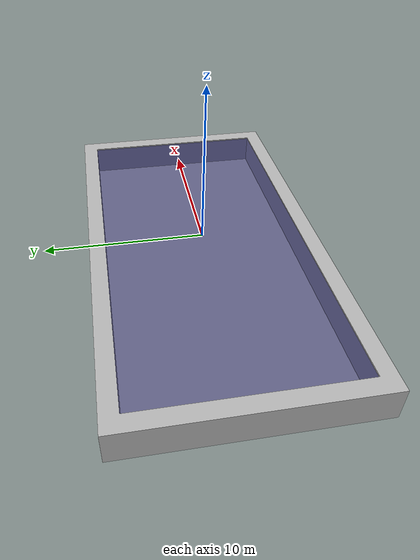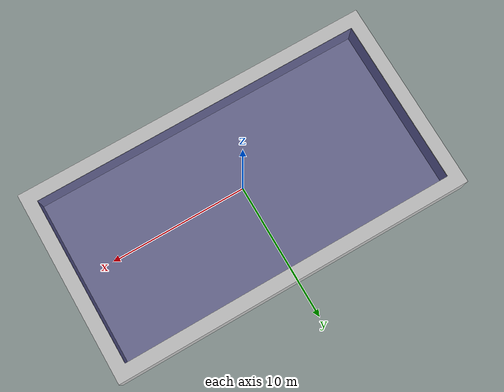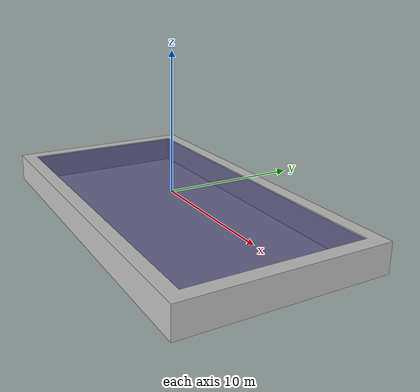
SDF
<?xml version="1.0"?>

<sdf version="1.5">
    <world name="semi_olympic_pool_world">

        <physics name="default_physics" default="true" type="ode">
            <max_step_size>0.001</max_step_size>
            <real_time_factor>1</real_time_factor>
            <real_time_update_rate>1000</real_time_update_rate>
            <ode>
            <solver>
                <type>quick</type>
                <iters>50</iters>
                <sor>0.5</sor>
            </solver>
            </ode>
        </physics>

        <scene>
            <sky>
                <clouds>
                    <speed>12</speed>
                </clouds>
            </sky>
            <shadows>1</shadows>
        </scene>

        <include>
            <uri>model://sun</uri>
        </include>

        <model name="water">
            <static>true</static>
            <pose>0 0 0 0 0 0</pose>
            <link name="water_link">
                <visual name="water_visual">
                    <transparency>0.5</transparency>
                    <cast_shadows>false</cast_shadows>
                    <geometry>
                        <box>
                            <size>25 12.5 0.01</size>
                        </box>
                    </geometry>
                    <material>
                        <ambient>0.2 0.2 0.4 1</ambient>
                        <diffuse>0.1 0.1 0.4 1</diffuse>
                        <specular>0.1 0.1 0.3 1</specular>
                        <emissive>0 0 0 1</emissive>
                    </material>
                </visual>
            </link>
        </model>

        <model name="semi_olympic_pool">
            <pose>0 0 0 0 0 0</pose>
            <static>true</static>
            <link name="ground_link">
                <visual name="ground_visual">
                    <cast_shadows>false</cast_shadows>
                    <geometry>
                        <mesh>
                            <uri>model://semi_olympic_pool/semi_olympic_pool.dae</uri>
                            <scale>1 1 1</scale>
                        </mesh>
                    </geometry>
                </visual>
                <collision name="ground_collision">
                    <geometry>
                        <mesh>
                            <uri>model://semi_olympic_pool/semi_olympic_pool.dae</uri>
                            <scale>1 1 1</scale>
                        </mesh>
                    </geometry>
                </collision>
            </link>
        </model>

    </world>
</sdf>
